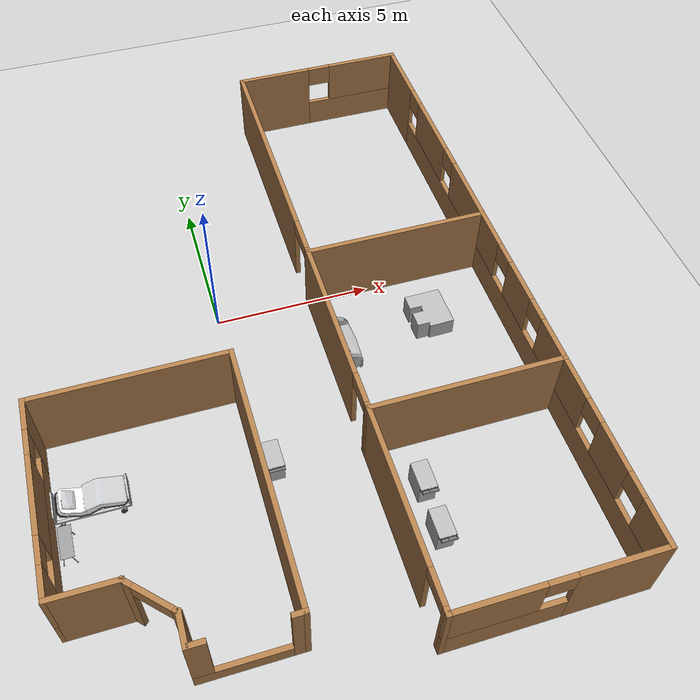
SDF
<sdf version="1.6">
 <world name="default">
  <model name="ground_plane">
   <static>1</static>
   <link name="link">
    <collision name="collision">
     <geometry><plane><normal>0 0 1</normal><size>100 100</size></plane></geometry>
     <surface>
      <contact><collide_bitmask>65535</collide_bitmask></contact>
      <friction><ode><mu>100</mu><mu2>50</mu2></ode></friction>
     </surface>
    </collision>
    <visual name="visual">
     <cast_shadows>0</cast_shadows>
     <geometry><plane><normal>0 0 1</normal><size>100 100</size></plane></geometry>
     <material>
      <script><uri>file://media/materials/scripts/gazebo.material</uri><name>Gazebo/Grey</name></script>
     </material>
    </visual>
   </link>
  </model>
  <model name="hospital_room_empty_clone">
   <link name="Wall_0">
    <pose>-4e-06 -3.9165 0 0 -0 0</pose>
    <visual name="Wall_0_Visual">
     <pose>0 0 1.25 0 -0 0</pose>
     <geometry><box><size>6 0.15 2.5</size></box></geometry>
     <material>
      <script><uri>file://media/materials/scripts/gazebo.material</uri><name>Gazebo/Wood</name></script>
      <ambient>1 1 1 1</ambient>
     </material>
     <meta><layer>0</layer></meta>
    </visual>
    <collision name="Wall_0_Collision">
     <pose>0 0 1.25 0 -0 0</pose>
     <geometry><box><size>6 0.15 2.5</size></box></geometry>
     <surface>
      <friction>
       <ode><mu>1</mu><mu2>1</mu2><fdir1>0 0 0</fdir1><slip1>0</slip1><slip2>0</slip2></ode>
       <torsional>
        <coefficient>1</coefficient>
        <patch_radius>0</patch_radius>
        <surface_radius>0</surface_radius>
        <use_patch_radius>1</use_patch_radius>
        <ode><slip>0</slip></ode>
       </torsional>
      </friction>
      <bounce><restitution_coefficient>0</restitution_coefficient><threshold>1e+06</threshold></bounce>
      <contact>
       <collide_without_contact>0</collide_without_contact>
       <collide_without_contact_bitmask>1</collide_without_contact_bitmask>
       <collide_bitmask>1</collide_bitmask>
       <ode>
        <soft_cfm>0</soft_cfm>
        <soft_erp>0.2</soft_erp>
        <kp>1e+13</kp>
        <kd>1</kd>
        <max_vel>0.01</max_vel>
        <min_depth>0</min_depth>
       </ode>
       <bullet>
        <split_impulse>1</split_impulse>
        <split_impulse_penetration_threshold>-0.01</split_impulse_penetration_threshold>
        <soft_cfm>0</soft_cfm>
        <soft_erp>0.2</soft_erp>
        <kp>1e+13</kp>
        <kd>1</kd>
       </bullet>
      </contact>
     </surface>
    </collision>
   </link>
   <link name="Wall_3">
    <pose>-2.925 0 0 0 -0 1.5708</pose>
    <visual name="Wall_3_Visual">
     <pose>0 0 1.25 0 -0 0</pose>
     <geometry><box><size>7.98302 0.15 2.5</size></box></geometry>
     <material>
      <script><uri>file://media/materials/scripts/gazebo.material</uri><name>Gazebo/Wood</name></script>
      <ambient>1 1 1 1</ambient>
     </material>
     <meta><layer>0</layer></meta>
    </visual>
    <collision name="Wall_3_Collision">
     <pose>0 0 1.25 0 -0 0</pose>
     <geometry><box><size>7.98302 0.15 2.5</size></box></geometry>
     <surface>
      <friction>
       <ode><mu>1</mu><mu2>1</mu2><fdir1>0 0 0</fdir1><slip1>0</slip1><slip2>0</slip2></ode>
       <torsional>
        <coefficient>1</coefficient>
        <patch_radius>0</patch_radius>
        <surface_radius>0</surface_radius>
        <use_patch_radius>1</use_patch_radius>
        <ode><slip>0</slip></ode>
       </torsional>
      </friction>
      <bounce><restitution_coefficient>0</restitution_coefficient><threshold>1e+06</threshold></bounce>
      <contact>
       <collide_without_contact>0</collide_without_contact>
       <collide_without_contact_bitmask>1</collide_without_contact_bitmask>
       <collide_bitmask>1</collide_bitmask>
       <ode>
        <soft_cfm>0</soft_cfm>
        <soft_erp>0.2</soft_erp>
        <kp>1e+13</kp>
        <kd>1</kd>
        <max_vel>0.01</max_vel>
        <min_depth>0</min_depth>
       </ode>
       <bullet>
        <split_impulse>1</split_impulse>
        <split_impulse_penetration_threshold>-0.01</split_impulse_penetration_threshold>
        <soft_cfm>0</soft_cfm>
        <soft_erp>0.2</soft_erp>
        <kp>1e+13</kp>
        <kd>1</kd>
       </bullet>
      </contact>
     </surface>
    </collision>
   </link>
   <link name="Wall_4">
    <pose>-1.5 3.9165 0 0 -0 0</pose>
    <visual name="Wall_4_Visual_0">
     <pose>-1.28125 0 1.25 0 -0 0</pose>
     <geometry><box><size>0.437506 0.15 2.5</size></box></geometry>
     <material>
      <script><uri>file://media/materials/scripts/gazebo.material</uri><name>Gazebo/Wood</name></script>
      <ambient>1 1 1 1</ambient>
     </material>
     <meta><layer>0</layer></meta>
    </visual>
    <visual name="Wall_4_Visual_1">
     <pose>0.218753 0 0.25 0 -0 0</pose>
     <geometry><box><size>2.56249 0.15 0.5</size></box></geometry>
     <material>
      <script><uri>file://media/materials/scripts/gazebo.material</uri><name>Gazebo/Wood</name></script>
      <ambient>1 1 1 1</ambient>
     </material>
     <meta><layer>0</layer></meta>
    </visual>
    <visual name="Wall_4_Visual_2">
     <pose>1.21875 0 1.5 0 -0 0</pose>
     <geometry><box><size>0.562494 0.15 2</size></box></geometry>
     <material>
      <script><uri>file://media/materials/scripts/gazebo.material</uri><name>Gazebo/Wood</name></script>
      <ambient>1 1 1 1</ambient>
     </material>
     <meta><layer>0</layer></meta>
    </visual>
    <collision name="Wall_4_Collision_0">
     <pose>-1.28125 0 1.25 0 -0 0</pose>
     <geometry><box><size>0.437506 0.15 2.5</size></box></geometry>
     <surface>
      <friction>
       <ode><mu>1</mu><mu2>1</mu2><fdir1>0 0 0</fdir1><slip1>0</slip1><slip2>0</slip2></ode>
       <torsional>
        <coefficient>1</coefficient>
        <patch_radius>0</patch_radius>
        <surface_radius>0</surface_radius>
        <use_patch_radius>1</use_patch_radius>
        <ode><slip>0</slip></ode>
       </torsional>
      </friction>
      <bounce><restitution_coefficient>0</restitution_coefficient><threshold>1e+06</threshold></bounce>
      <contact>
       <collide_without_contact>0</collide_without_contact>
       <collide_without_contact_bitmask>1</collide_without_contact_bitmask>
       <collide_bitmask>1</collide_bitmask>
       <ode>
        <soft_cfm>0</soft_cfm>
        <soft_erp>0.2</soft_erp>
        <kp>1e+13</kp>
        <kd>1</kd>
        <max_vel>0.01</max_vel>
        <min_depth>0</min_depth>
       </ode>
       <bullet>
        <split_impulse>1</split_impulse>
        <split_impulse_penetration_threshold>-0.01</split_impulse_penetration_threshold>
        <soft_cfm>0</soft_cfm>
        <soft_erp>0.2</soft_erp>
        <kp>1e+13</kp>
        <kd>1</kd>
       </bullet>
      </contact>
     </surface>
    </collision>
    <collision name="Wall_4_Collision_1">
     <pose>0.218753 0 0.25 0 -0 0</pose>
     <geometry><box><size>2.56249 0.15 0.5</size></box></geometry>
     <surface>
      <friction>
       <ode><mu>1</mu><mu2>1</mu2><fdir1>0 0 0</fdir1><slip1>0</slip1><slip2>0</slip2></ode>
       <torsional>
        <coefficient>1</coefficient>
        <patch_radius>0</patch_radius>
        <surface_radius>0</surface_radius>
        <use_patch_radius>1</use_patch_radius>
        <ode><slip>0</slip></ode>
       </torsional>
      </friction>
      <bounce><restitution_coefficient>0</restitution_coefficient><threshold>1e+06</threshold></bounce>
      <contact>
       <collide_without_contact>0</collide_without_contact>
       <collide_without_contact_bitmask>1</collide_without_contact_bitmask>
       <collide_bitmask>1</collide_bitmask>
       <ode>
        <soft_cfm>0</soft_cfm>
        <soft_erp>0.2</soft_erp>
        <kp>1e+13</kp>
        <kd>1</kd>
        <max_vel>0.01</max_vel>
        <min_depth>0</min_depth>
       </ode>
       <bullet>
        <split_impulse>1</split_impulse>
        <split_impulse_penetration_threshold>-0.01</split_impulse_penetration_threshold>
        <soft_cfm>0</soft_cfm>
        <soft_erp>0.2</soft_erp>
        <kp>1e+13</kp>
        <kd>1</kd>
       </bullet>
      </contact>
     </surface>
    </collision>
    <collision name="Wall_4_Collision_2">
     <pose>1.21875 0 1.5 0 -0 0</pose>
     <geometry><box><size>0.562494 0.15 2</size></box></geometry>
     <surface>
      <friction>
       <ode><mu>1</mu><mu2>1</mu2><fdir1>0 0 0</fdir1><slip1>0</slip1><slip2>0</slip2></ode>
       <torsional>
        <coefficient>1</coefficient>
        <patch_radius>0</patch_radius>
        <surface_radius>0</surface_radius>
        <use_patch_radius>1</use_patch_radius>
        <ode><slip>0</slip></ode>
       </torsional>
      </friction>
      <bounce><restitution_coefficient>0</restitution_coefficient><threshold>1e+06</threshold></bounce>
      <contact>
       <collide_without_contact>0</collide_without_contact>
       <collide_without_contact_bitmask>1</collide_without_contact_bitmask>
       <collide_bitmask>1</collide_bitmask>
       <ode>
        <soft_cfm>0</soft_cfm>
        <soft_erp>0.2</soft_erp>
        <kp>1e+13</kp>
        <kd>1</kd>
        <max_vel>0.01</max_vel>
        <min_depth>0</min_depth>
       </ode>
       <bullet>
        <split_impulse>1</split_impulse>
        <split_impulse_penetration_threshold>-0.01</split_impulse_penetration_threshold>
        <soft_cfm>0</soft_cfm>
        <soft_erp>0.2</soft_erp>
        <kp>1e+13</kp>
        <kd>1</kd>
       </bullet>
      </contact>
     </surface>
    </collision>
   </link>
   <link name="Wall_5">
    <pose>-0.075004 3.4915 0 0 0 -1.5708</pose>
    <visual name="Wall_5_Visual">
     <pose>0 0 1.25 0 -0 0</pose>
     <geometry><box><size>1 0.15 2.5</size></box></geometry>
     <material>
      <script><uri>file://media/materials/scripts/gazebo.material</uri><name>Gazebo/Wood</name></script>
      <ambient>1 1 1 1</ambient>
     </material>
     <meta><layer>0</layer></meta>
    </visual>
    <collision name="Wall_5_Collision">
     <pose>0 0 1.25 0 -0 0</pose>
     <geometry><box><size>1 0.15 2.5</size></box></geometry>
     <surface>
      <friction>
       <ode><mu>1</mu><mu2>1</mu2><fdir1>0 0 0</fdir1><slip1>0</slip1><slip2>0</slip2></ode>
       <torsional>
        <coefficient>1</coefficient>
        <patch_radius>0</patch_radius>
        <surface_radius>0</surface_radius>
        <use_patch_radius>1</use_patch_radius>
        <ode><slip>0</slip></ode>
       </torsional>
      </friction>
      <bounce><restitution_coefficient>0</restitution_coefficient><threshold>1e+06</threshold></bounce>
      <contact>
       <collide_without_contact>0</collide_without_contact>
       <collide_without_contact_bitmask>1</collide_without_contact_bitmask>
       <collide_bitmask>1</collide_bitmask>
       <ode>
        <soft_cfm>0</soft_cfm>
        <soft_erp>0.2</soft_erp>
        <kp>1e+13</kp>
        <kd>1</kd>
        <max_vel>0.01</max_vel>
        <min_depth>0</min_depth>
       </ode>
       <bullet>
        <split_impulse>1</split_impulse>
        <split_impulse_penetration_threshold>-0.01</split_impulse_penetration_threshold>
        <soft_cfm>0</soft_cfm>
        <soft_erp>0.2</soft_erp>
        <kp>1e+13</kp>
        <kd>1</kd>
       </bullet>
      </contact>
     </surface>
    </collision>
   </link>
   <link name="Wall_7">
    <pose>2.925 -1 0 0 -0 1.5708</pose>
    <visual name="Wall_7_Visual_0">
     <pose>-2.47597 0 1.25 0 -0 0</pose>
     <geometry><box><size>1.03106 0.15 2.5</size></box></geometry>
     <material>
      <script><uri>file://media/materials/scripts/gazebo.material</uri><name>Gazebo/Wood</name></script>
      <ambient>0.921569 0.807843 0.615686 1</ambient>
     </material>
     <meta><layer>0</layer></meta>
    </visual>
    <visual name="Wall_7_Visual_1">
     <pose>0.515531 0 0.5 0 -0 0</pose>
     <geometry><box><size>4.95194 0.15 1</size></box></geometry>
     <material>
      <script><uri>file://media/materials/scripts/gazebo.material</uri><name>Gazebo/Wood</name></script>
      <ambient>0.921569 0.807843 0.615686 1</ambient>
     </material>
     <meta><layer>0</layer></meta>
    </visual>
    <visual name="Wall_7_Visual_2">
     <pose>0.016139 0 1.75 0 -0 0</pose>
     <geometry><box><size>2.35315 0.15 1.5</size></box></geometry>
     <material>
      <script><uri>file://media/materials/scripts/gazebo.material</uri><name>Gazebo/Wood</name></script>
      <ambient>0.921569 0.807843 0.615686 1</ambient>
     </material>
     <meta><layer>0</layer></meta>
    </visual>
    <visual name="Wall_7_Visual_3">
     <pose>2.49211 0 1.75 0 -0 0</pose>
     <geometry><box><size>0.998785 0.15 1.5</size></box></geometry>
     <material>
      <script><uri>file://media/materials/scripts/gazebo.material</uri><name>Gazebo/Wood</name></script>
      <ambient>0.921569 0.807843 0.615686 1</ambient>
     </material>
     <meta><layer>0</layer></meta>
    </visual>
    <visual name="Wall_7_Visual_4">
     <pose>-1.56044 0 2.15 0 -0 0</pose>
     <geometry><box><size>0.8 0.15 0.7</size></box></geometry>
     <material>
      <script><uri>file://media/materials/scripts/gazebo.material</uri><name>Gazebo/Wood</name></script>
      <ambient>0.921569 0.807843 0.615686 1</ambient>
     </material>
     <meta><layer>0</layer></meta>
    </visual>
    <visual name="Wall_7_Visual_5">
     <pose>1.59272 0 2.15 0 -0 0</pose>
     <geometry><box><size>0.8 0.15 0.7</size></box></geometry>
     <material>
      <script><uri>file://media/materials/scripts/gazebo.material</uri><name>Gazebo/Wood</name></script>
      <ambient>0.921569 0.807843 0.615686 1</ambient>
     </material>
     <meta><layer>0</layer></meta>
    </visual>
    <collision name="Wall_7_Collision_0">
     <pose>-2.47597 0 1.25 0 -0 0</pose>
     <geometry><box><size>1.03106 0.15 2.5</size></box></geometry>
     <surface>
      <friction>
       <ode><mu>1</mu><mu2>1</mu2><fdir1>0 0 0</fdir1><slip1>0</slip1><slip2>0</slip2></ode>
       <torsional>
        <coefficient>1</coefficient>
        <patch_radius>0</patch_radius>
        <surface_radius>0</surface_radius>
        <use_patch_radius>1</use_patch_radius>
        <ode><slip>0</slip></ode>
       </torsional>
      </friction>
      <bounce><restitution_coefficient>0</restitution_coefficient><threshold>1e+06</threshold></bounce>
      <contact>
       <collide_without_contact>0</collide_without_contact>
       <collide_without_contact_bitmask>1</collide_without_contact_bitmask>
       <collide_bitmask>1</collide_bitmask>
       <ode>
        <soft_cfm>0</soft_cfm>
        <soft_erp>0.2</soft_erp>
        <kp>1e+13</kp>
        <kd>1</kd>
        <max_vel>0.01</max_vel>
        <min_depth>0</min_depth>
       </ode>
       <bullet>
        <split_impulse>1</split_impulse>
        <split_impulse_penetration_threshold>-0.01</split_impulse_penetration_threshold>
        <soft_cfm>0</soft_cfm>
        <soft_erp>0.2</soft_erp>
        <kp>1e+13</kp>
        <kd>1</kd>
       </bullet>
      </contact>
     </surface>
    </collision>
    <collision name="Wall_7_Collision_1">
     <pose>0.515531 0 0.5 0 -0 0</pose>
     <geometry><box><size>4.95194 0.15 1</size></box></geometry>
     <surface>
      <friction>
       <ode><mu>1</mu><mu2>1</mu2><fdir1>0 0 0</fdir1><slip1>0</slip1><slip2>0</slip2></ode>
       <torsional>
        <coefficient>1</coefficient>
        <patch_radius>0</patch_radius>
        <surface_radius>0</surface_radius>
        <use_patch_radius>1</use_patch_radius>
        <ode><slip>0</slip></ode>
       </torsional>
      </friction>
      <bounce><restitution_coefficient>0</restitution_coefficient><threshold>1e+06</threshold></bounce>
      <contact>
       <collide_without_contact>0</collide_without_contact>
       <collide_without_contact_bitmask>1</collide_without_contact_bitmask>
       <collide_bitmask>1</collide_bitmask>
       <ode>
        <soft_cfm>0</soft_cfm>
        <soft_erp>0.2</soft_erp>
        <kp>1e+13</kp>
        <kd>1</kd>
        <max_vel>0.01</max_vel>
        <min_depth>0</min_depth>
       </ode>
       <bullet>
        <split_impulse>1</split_impulse>
        <split_impulse_penetration_threshold>-0.01</split_impulse_penetration_threshold>
        <soft_cfm>0</soft_cfm>
        <soft_erp>0.2</soft_erp>
        <kp>1e+13</kp>
        <kd>1</kd>
       </bullet>
      </contact>
     </surface>
    </collision>
    <collision name="Wall_7_Collision_2">
     <pose>0.016139 0 1.75 0 -0 0</pose>
     <geometry><box><size>2.35315 0.15 1.5</size></box></geometry>
     <surface>
      <friction>
       <ode><mu>1</mu><mu2>1</mu2><fdir1>0 0 0</fdir1><slip1>0</slip1><slip2>0</slip2></ode>
       <torsional>
        <coefficient>1</coefficient>
        <patch_radius>0</patch_radius>
        <surface_radius>0</surface_radius>
        <use_patch_radius>1</use_patch_radius>
        <ode><slip>0</slip></ode>
       </torsional>
      </friction>
      <bounce><restitution_coefficient>0</restitution_coefficient><threshold>1e+06</threshold></bounce>
      <contact>
       <collide_without_contact>0</collide_without_contact>
       <collide_without_contact_bitmask>1</collide_without_contact_bitmask>
       <collide_bitmask>1</collide_bitmask>
       <ode>
        <soft_cfm>0</soft_cfm>
        <soft_erp>0.2</soft_erp>
        <kp>1e+13</kp>
        <kd>1</kd>
        <max_vel>0.01</max_vel>
        <min_depth>0</min_depth>
       </ode>
       <bullet>
        <split_impulse>1</split_impulse>
        <split_impulse_penetration_threshold>-0.01</split_impulse_penetration_threshold>
        <soft_cfm>0</soft_cfm>
        <soft_erp>0.2</soft_erp>
        <kp>1e+13</kp>
        <kd>1</kd>
       </bullet>
      </contact>
     </surface>
    </collision>
    <collision name="Wall_7_Collision_3">
     <pose>2.49211 0 1.75 0 -0 0</pose>
     <geometry><box><size>0.998785 0.15 1.5</size></box></geometry>
     <surface>
      <friction>
       <ode><mu>1</mu><mu2>1</mu2><fdir1>0 0 0</fdir1><slip1>0</slip1><slip2>0</slip2></ode>
       <torsional>
        <coefficient>1</coefficient>
        <patch_radius>0</patch_radius>
        <surface_radius>0</surface_radius>
        <use_patch_radius>1</use_patch_radius>
        <ode><slip>0</slip></ode>
       </torsional>
      </friction>
      <bounce><restitution_coefficient>0</restitution_coefficient><threshold>1e+06</threshold></bounce>
      <contact>
       <collide_without_contact>0</collide_without_contact>
       <collide_without_contact_bitmask>1</collide_without_contact_bitmask>
       <collide_bitmask>1</collide_bitmask>
       <ode>
        <soft_cfm>0</soft_cfm>
        <soft_erp>0.2</soft_erp>
        <kp>1e+13</kp>
        <kd>1</kd>
        <max_vel>0.01</max_vel>
        <min_depth>0</min_depth>
       </ode>
       <bullet>
        <split_impulse>1</split_impulse>
        <split_impulse_penetration_threshold>-0.01</split_impulse_penetration_threshold>
        <soft_cfm>0</soft_cfm>
        <soft_erp>0.2</soft_erp>
        <kp>1e+13</kp>
        <kd>1</kd>
       </bullet>
      </contact>
     </surface>
    </collision>
    <collision name="Wall_7_Collision_4">
     <pose>-1.56044 0 2.15 0 -0 0</pose>
     <geometry><box><size>0.8 0.15 0.7</size></box></geometry>
     <surface>
      <friction>
       <ode><mu>1</mu><mu2>1</mu2><fdir1>0 0 0</fdir1><slip1>0</slip1><slip2>0</slip2></ode>
       <torsional>
        <coefficient>1</coefficient>
        <patch_radius>0</patch_radius>
        <surface_radius>0</surface_radius>
        <use_patch_radius>1</use_patch_radius>
        <ode><slip>0</slip></ode>
       </torsional>
      </friction>
      <bounce><restitution_coefficient>0</restitution_coefficient><threshold>1e+06</threshold></bounce>
      <contact>
       <collide_without_contact>0</collide_without_contact>
       <collide_without_contact_bitmask>1</collide_without_contact_bitmask>
       <collide_bitmask>1</collide_bitmask>
       <ode>
        <soft_cfm>0</soft_cfm>
        <soft_erp>0.2</soft_erp>
        <kp>1e+13</kp>
        <kd>1</kd>
        <max_vel>0.01</max_vel>
        <min_depth>0</min_depth>
       </ode>
       <bullet>
        <split_impulse>1</split_impulse>
        <split_impulse_penetration_threshold>-0.01</split_impulse_penetration_threshold>
        <soft_cfm>0</soft_cfm>
        <soft_erp>0.2</soft_erp>
        <kp>1e+13</kp>
        <kd>1</kd>
       </bullet>
      </contact>
     </surface>
    </collision>
    <collision name="Wall_7_Collision_5">
     <pose>1.59272 0 2.15 0 -0 0</pose>
     <geometry><box><size>0.8 0.15 0.7</size></box></geometry>
     <surface>
      <friction>
       <ode><mu>1</mu><mu2>1</mu2><fdir1>0 0 0</fdir1><slip1>0</slip1><slip2>0</slip2></ode>
       <torsional>
        <coefficient>1</coefficient>
        <patch_radius>0</patch_radius>
        <surface_radius>0</surface_radius>
        <use_patch_radius>1</use_patch_radius>
        <ode><slip>0</slip></ode>
       </torsional>
      </friction>
      <bounce><restitution_coefficient>0</restitution_coefficient><threshold>1e+06</threshold></bounce>
      <contact>
       <collide_without_contact>0</collide_without_contact>
       <collide_without_contact_bitmask>1</collide_without_contact_bitmask>
       <collide_bitmask>1</collide_bitmask>
       <ode>
        <soft_cfm>0</soft_cfm>
        <soft_erp>0.2</soft_erp>
        <kp>1e+13</kp>
        <kd>1</kd>
        <max_vel>0.01</max_vel>
        <min_depth>0</min_depth>
       </ode>
       <bullet>
        <split_impulse>1</split_impulse>
        <split_impulse_penetration_threshold>-0.01</split_impulse_penetration_threshold>
        <soft_cfm>0</soft_cfm>
        <soft_erp>0.2</soft_erp>
        <kp>1e+13</kp>
        <kd>1</kd>
       </bullet>
      </contact>
     </surface>
    </collision>
   </link>
   <link name="Wall_8">
    <pose>2 1.9166 0 0 -0 3.14148</pose>
    <visual name="Wall_8_Visual">
     <pose>0 0 1.25 0 -0 0</pose>
     <geometry><box><size>2 0.15 2.5</size></box></geometry>
     <material>
      <script><uri>file://media/materials/scripts/gazebo.material</uri><name>Gazebo/Wood</name></script>
      <ambient>1 1 1 1</ambient>
     </material>
     <meta><layer>0</layer></meta>
    </visual>
    <collision name="Wall_8_Collision">
     <pose>0 0 1.25 0 -0 0</pose>
     <geometry><box><size>2 0.15 2.5</size></box></geometry>
     <surface>
      <friction>
       <ode><mu>1</mu><mu2>1</mu2><fdir1>0 0 0</fdir1><slip1>0</slip1><slip2>0</slip2></ode>
       <torsional>
        <coefficient>1</coefficient>
        <patch_radius>0</patch_radius>
        <surface_radius>0</surface_radius>
        <use_patch_radius>1</use_patch_radius>
        <ode><slip>0</slip></ode>
       </torsional>
      </friction>
      <bounce><restitution_coefficient>0</restitution_coefficient><threshold>1e+06</threshold></bounce>
      <contact>
       <collide_without_contact>0</collide_without_contact>
       <collide_without_contact_bitmask>1</collide_without_contact_bitmask>
       <collide_bitmask>1</collide_bitmask>
       <ode>
        <soft_cfm>0</soft_cfm>
        <soft_erp>0.2</soft_erp>
        <kp>1e+13</kp>
        <kd>1</kd>
        <max_vel>0.01</max_vel>
        <min_depth>0</min_depth>
       </ode>
       <bullet>
        <split_impulse>1</split_impulse>
        <split_impulse_penetration_threshold>-0.01</split_impulse_penetration_threshold>
        <soft_cfm>0</soft_cfm>
        <soft_erp>0.2</soft_erp>
        <kp>1e+13</kp>
        <kd>1</kd>
       </bullet>
      </contact>
     </surface>
    </collision>
   </link>
   <link name="Wall_9">
    <pose>0.499996 2.4916 0 0 -0 2.35628</pose>
    <visual name="Wall_9_Visual_1">
     <pose>0.785148 0 1.25 0 -0 0</pose>
     <geometry><box><size>0.205905 0.15 2.5</size></box></geometry>
     <material>
      <script><uri>file://media/materials/scripts/gazebo.material</uri><name>Gazebo/Wood</name></script>
      <ambient>1 1 1 1</ambient>
     </material>
     <meta><layer>0</layer></meta>
    </visual>
    <visual name="Wall_9_Visual_0">
     <pose>-0.702952 0 1.25 0 -0 0</pose>
     <geometry><box><size>0.370295 0.15 2.5</size></box></geometry>
     <material>
      <script><uri>file://media/materials/scripts/gazebo.material</uri><name>Gazebo/Wood</name></script>
      <ambient>1 1 1 1</ambient>
     </material>
     <meta><layer>0</layer></meta>
    </visual>
    <visual name="Wall_9_Visual_2">
     <pose>0.082195 0 2.25 0 -0 0</pose>
     <geometry><box><size>1.2 0.15 0.5</size></box></geometry>
     <material>
      <script><uri>file://media/materials/scripts/gazebo.material</uri><name>Gazebo/Wood</name></script>
      <ambient>1 1 1 1</ambient>
     </material>
     <meta><layer>0</layer></meta>
    </visual>
    <collision name="Wall_9_Collision_0">
     <pose>-0.702952 0 1.25 0 -0 0</pose>
     <geometry><box><size>0.370295 0.15 2.5</size></box></geometry>
     <surface>
      <friction>
       <ode><mu>1</mu><mu2>1</mu2><fdir1>0 0 0</fdir1><slip1>0</slip1><slip2>0</slip2></ode>
       <torsional>
        <coefficient>1</coefficient>
        <patch_radius>0</patch_radius>
        <surface_radius>0</surface_radius>
        <use_patch_radius>1</use_patch_radius>
        <ode><slip>0</slip></ode>
       </torsional>
      </friction>
      <bounce><restitution_coefficient>0</restitution_coefficient><threshold>1e+06</threshold></bounce>
      <contact>
       <collide_without_contact>0</collide_without_contact>
       <collide_without_contact_bitmask>1</collide_without_contact_bitmask>
       <collide_bitmask>1</collide_bitmask>
       <ode>
        <soft_cfm>0</soft_cfm>
        <soft_erp>0.2</soft_erp>
        <kp>1e+13</kp>
        <kd>1</kd>
        <max_vel>0.01</max_vel>
        <min_depth>0</min_depth>
       </ode>
       <bullet>
        <split_impulse>1</split_impulse>
        <split_impulse_penetration_threshold>-0.01</split_impulse_penetration_threshold>
        <soft_cfm>0</soft_cfm>
        <soft_erp>0.2</soft_erp>
        <kp>1e+13</kp>
        <kd>1</kd>
       </bullet>
      </contact>
     </surface>
    </collision>
    <collision name="Wall_9_Collision_1">
     <pose>0.785148 0 1.25 0 -0 0</pose>
     <geometry><box><size>0.205905 0.15 2.5</size></box></geometry>
     <surface>
      <friction>
       <ode><mu>1</mu><mu2>1</mu2><fdir1>0 0 0</fdir1><slip1>0</slip1><slip2>0</slip2></ode>
       <torsional>
        <coefficient>1</coefficient>
        <patch_radius>0</patch_radius>
        <surface_radius>0</surface_radius>
        <use_patch_radius>1</use_patch_radius>
        <ode><slip>0</slip></ode>
       </torsional>
      </friction>
      <bounce><restitution_coefficient>0</restitution_coefficient><threshold>1e+06</threshold></bounce>
      <contact>
       <collide_without_contact>0</collide_without_contact>
       <collide_without_contact_bitmask>1</collide_without_contact_bitmask>
       <collide_bitmask>1</collide_bitmask>
       <ode>
        <soft_cfm>0</soft_cfm>
        <soft_erp>0.2</soft_erp>
        <kp>1e+13</kp>
        <kd>1</kd>
        <max_vel>0.01</max_vel>
        <min_depth>0</min_depth>
       </ode>
       <bullet>
        <split_impulse>1</split_impulse>
        <split_impulse_penetration_threshold>-0.01</split_impulse_penetration_threshold>
        <soft_cfm>0</soft_cfm>
        <soft_erp>0.2</soft_erp>
        <kp>1e+13</kp>
        <kd>1</kd>
       </bullet>
      </contact>
     </surface>
    </collision>
    <collision name="Wall_9_Collision_2">
     <pose>0.082195 0 2.25 0 -0 0</pose>
     <geometry><box><size>1.2 0.15 0.5</size></box></geometry>
     <surface>
      <friction>
       <ode><mu>1</mu><mu2>1</mu2><fdir1>0 0 0</fdir1><slip1>0</slip1><slip2>0</slip2></ode>
       <torsional>
        <coefficient>1</coefficient>
        <patch_radius>0</patch_radius>
        <surface_radius>0</surface_radius>
        <use_patch_radius>1</use_patch_radius>
        <ode><slip>0</slip></ode>
       </torsional>
      </friction>
      <bounce><restitution_coefficient>0</restitution_coefficient><threshold>1e+06</threshold></bounce>
      <contact>
       <collide_without_contact>0</collide_without_contact>
       <collide_without_contact_bitmask>1</collide_without_contact_bitmask>
       <collide_bitmask>1</collide_bitmask>
       <ode>
        <soft_cfm>0</soft_cfm>
        <soft_erp>0.2</soft_erp>
        <kp>1e+13</kp>
        <kd>1</kd>
        <max_vel>0.01</max_vel>
        <min_depth>0</min_depth>
       </ode>
       <bullet>
        <split_impulse>1</split_impulse>
        <split_impulse_penetration_threshold>-0.01</split_impulse_penetration_threshold>
        <soft_cfm>0</soft_cfm>
        <soft_erp>0.2</soft_erp>
        <kp>1e+13</kp>
        <kd>1</kd>
       </bullet>
      </contact>
     </surface>
    </collision>
   </link>
   <static>1</static>
   <pose>-3.00568 -7.00442 0 0 -0 3.14145</pose>
  </model>
  <model name="hospital_room2_empty_0">
   <pose>5.99215 -1.51021 0 0 -0 0</pose>
   <link name="Wall_0">
    <pose>-2.925 0 0 0 -0 1.5708</pose>
    <visual name="Wall_0_Visual_0">
     <pose>-10.3642 0 1.25 0 -0 0</pose>
     <geometry><box><size>0.271667 0.15 2.5</size></box></geometry>
     <material>
      <script><uri>file://media/materials/scripts/gazebo.material</uri><name>Gazebo/Wood</name></script>
      <ambient>1 1 1 1</ambient>
     </material>
     <meta><layer>0</layer></meta>
    </visual>
    <collision name="Wall_0_Collision_0">
     <geometry><box><size>0.271667 0.15 2.5</size></box></geometry>
     <pose>-10.3642 0 1.25 0 -0 0</pose>
    </collision>
    <visual name="Wall_0_Visual_1">
     <pose>-6.76986 0 1.25 0 -0 0</pose>
     <geometry><box><size>4.91694 0.15 2.5</size></box></geometry>
     <material>
      <script><uri>file://media/materials/scripts/gazebo.material</uri><name>Gazebo/Wood</name></script>
      <ambient>1 1 1 1</ambient>
     </material>
     <meta><layer>0</layer></meta>
    </visual>
    <collision name="Wall_0_Collision_1">
     <geometry><box><size>4.91694 0.15 2.5</size></box></geometry>
     <pose>-6.76986 0 1.25 0 -0 0</pose>
    </collision>
    <visual name="Wall_0_Visual_2">
     <pose>-0.820784 0 1.25 0 -0 0</pose>
     <geometry><box><size>4.98121 0.15 2.5</size></box></geometry>
     <material>
      <script><uri>file://media/materials/scripts/gazebo.material</uri><name>Gazebo/Wood</name></script>
      <ambient>1 1 1 1</ambient>
     </material>
     <meta><layer>0</layer></meta>
    </visual>
    <collision name="Wall_0_Collision_2">
     <geometry><box><size>4.98121 0.15 2.5</size></box></geometry>
     <pose>-0.820784 0 1.25 0 -0 0</pose>
    </collision>
    <visual name="Wall_0_Visual_3">
     <pose>6.68491 0 1.25 0 -0 0</pose>
     <geometry><box><size>7.63018 0.15 2.5</size></box></geometry>
     <material>
      <script><uri>file://media/materials/scripts/gazebo.material</uri><name>Gazebo/Wood</name></script>
      <ambient>1 1 1 1</ambient>
     </material>
     <meta><layer>0</layer></meta>
    </visual>
    <collision name="Wall_0_Collision_3">
     <geometry><box><size>7.63018 0.15 2.5</size></box></geometry>
     <pose>6.68491 0 1.25 0 -0 0</pose>
    </collision>
    <visual name="Wall_0_Visual_4">
     <pose>-9.72833 0 2.25 0 -0 0</pose>
     <geometry><box><size>1 0.15 0.5</size></box></geometry>
     <material>
      <script><uri>file://media/materials/scripts/gazebo.material</uri><name>Gazebo/Wood</name></script>
      <ambient>1 1 1 1</ambient>
     </material>
     <meta><layer>0</layer></meta>
    </visual>
    <collision name="Wall_0_Collision_4">
     <geometry><box><size>1 0.15 0.5</size></box></geometry>
     <pose>-9.72833 0 2.25 0 -0 0</pose>
    </collision>
    <visual name="Wall_0_Visual_5">
     <pose>-3.81139 0 2.25 0 -0 0</pose>
     <geometry><box><size>1 0.15 0.5</size></box></geometry>
     <material>
      <script><uri>file://media/materials/scripts/gazebo.material</uri><name>Gazebo/Wood</name></script>
      <ambient>1 1 1 1</ambient>
     </material>
     <meta><layer>0</layer></meta>
    </visual>
    <collision name="Wall_0_Collision_5">
     <geometry><box><size>1 0.15 0.5</size></box></geometry>
     <pose>-3.81139 0 2.25 0 -0 0</pose>
    </collision>
    <visual name="Wall_0_Visual_6">
     <pose>2.26982 0 2.25 0 -0 0</pose>
     <geometry><box><size>1.2 0.15 0.5</size></box></geometry>
     <material>
      <script><uri>file://media/materials/scripts/gazebo.material</uri><name>Gazebo/Wood</name></script>
      <ambient>1 1 1 1</ambient>
     </material>
     <meta><layer>0</layer></meta>
    </visual>
    <collision name="Wall_0_Collision_6">
     <geometry><box><size>1.2 0.15 0.5</size></box></geometry>
     <pose>2.26982 0 2.25 0 -0 0</pose>
    </collision>
   </link>
   <link name="Wall_10">
    <collision name="Wall_10_Collision">
     <geometry><box><size>6 0.15 2.5</size></box></geometry>
     <pose>0 0 1.25 0 -0 0</pose>
    </collision>
    <visual name="Wall_10_Visual">
     <pose>0 0 1.25 0 -0 0</pose>
     <geometry><box><size>6 0.15 2.5</size></box></geometry>
     <material>
      <script><uri>file://media/materials/scripts/gazebo.material</uri><name>Gazebo/Wood</name></script>
      <ambient>1 1 1 1</ambient>
     </material>
     <meta><layer>0</layer></meta>
    </visual>
    <pose>-0 -4.5 0 0 -0 0</pose>
   </link>
   <link name="Wall_2">
    <pose>-0 10.425 0 0 -0 0</pose>
    <visual name="Wall_2_Visual_0">
     <pose>-1.69561 0 1.25 0 -0 0</pose>
     <geometry><box><size>2.60879 0.15 2.5</size></box></geometry>
     <material>
      <script><uri>file://media/materials/scripts/gazebo.material</uri><name>Gazebo/Wood</name></script>
      <ambient>1 1 1 1</ambient>
     </material>
     <meta><layer>0</layer></meta>
    </visual>
    <collision name="Wall_2_Collision_0">
     <geometry><box><size>2.60879 0.15 2.5</size></box></geometry>
     <pose>-1.69561 0 1.25 0 -0 0</pose>
    </collision>
    <visual name="Wall_2_Visual_1">
     <pose>1.30439 0 0.5 0 -0 0</pose>
     <geometry><box><size>3.39121 0.15 1</size></box></geometry>
     <material>
      <script><uri>file://media/materials/scripts/gazebo.material</uri><name>Gazebo/Wood</name></script>
      <ambient>1 1 1 1</ambient>
     </material>
     <meta><layer>0</layer></meta>
    </visual>
    <collision name="Wall_2_Collision_1">
     <geometry><box><size>3.39121 0.15 1</size></box></geometry>
     <pose>1.30439 0 0.5 0 -0 0</pose>
    </collision>
    <visual name="Wall_2_Visual_2">
     <pose>1.7044 0 1.75 0 -0 0</pose>
     <geometry><box><size>2.59121 0.15 1.5</size></box></geometry>
     <material>
      <script><uri>file://media/materials/scripts/gazebo.material</uri><name>Gazebo/Wood</name></script>
      <ambient>1 1 1 1</ambient>
     </material>
     <meta><layer>0</layer></meta>
    </visual>
    <collision name="Wall_2_Collision_2">
     <geometry><box><size>2.59121 0.15 1.5</size></box></geometry>
     <pose>1.7044 0 1.75 0 -0 0</pose>
    </collision>
    <visual name="Wall_2_Visual_3">
     <pose>0.008791 0 2.15 0 -0 0</pose>
     <geometry><box><size>0.8 0.15 0.7</size></box></geometry>
     <material>
      <script><uri>file://media/materials/scripts/gazebo.material</uri><name>Gazebo/Wood</name></script>
      <ambient>1 1 1 1</ambient>
     </material>
     <meta><layer>0</layer></meta>
    </visual>
    <collision name="Wall_2_Collision_3">
     <geometry><box><size>0.8 0.15 0.7</size></box></geometry>
     <pose>0.008791 0 2.15 0 -0 0</pose>
    </collision>
   </link>
   <link name="Wall_4">
    <pose>2.925 0 0 0 -0 -1.5708</pose>
    <visual name="Wall_4_Visual_0">
     <pose>-9.29746 0 1.25 0 -0 0</pose>
     <geometry><box><size>2.40508 0.15 2.5</size></box></geometry>
     <material>
      <script><uri>file://media/materials/scripts/gazebo.material</uri><name>Gazebo/Wood</name></script>
      <ambient>1 1 1 1</ambient>
     </material>
     <meta><layer>0</layer></meta>
    </visual>
    <collision name="Wall_4_Collision_0">
     <geometry><box><size>2.40508 0.15 2.5</size></box></geometry>
     <pose>-9.29746 0 1.25 0 -0 0</pose>
    </collision>
    <visual name="Wall_4_Visual_1">
     <pose>1.20254 0 0.5 0 -0 0</pose>
     <geometry><box><size>18.5949 0.15 1</size></box></geometry>
     <material>
      <script><uri>file://media/materials/scripts/gazebo.material</uri><name>Gazebo/Wood</name></script>
      <ambient>1 1 1 1</ambient>
     </material>
     <meta><layer>0</layer></meta>
    </visual>
    <collision name="Wall_4_Collision_1">
     <geometry><box><size>18.5949 0.15 1</size></box></geometry>
     <pose>1.20254 0 0.5 0 -0 0</pose>
    </collision>
    <visual name="Wall_4_Visual_2">
     <pose>-6.03126 0 1.75 0 -0 0</pose>
     <geometry><box><size>2.52732 0.15 1.5</size></box></geometry>
     <material>
      <script><uri>file://media/materials/scripts/gazebo.material</uri><name>Gazebo/Wood</name></script>
      <ambient>1 1 1 1</ambient>
     </material>
     <meta><layer>0</layer></meta>
    </visual>
    <collision name="Wall_4_Collision_2">
     <geometry><box><size>2.52732 0.15 1.5</size></box></geometry>
     <pose>-6.03126 0 1.75 0 -0 0</pose>
    </collision>
    <visual name="Wall_4_Visual_3">
     <pose>-2.02155 0 1.75 0 -0 0</pose>
     <geometry><box><size>3.8921 0.15 1.5</size></box></geometry>
     <material>
      <script><uri>file://media/materials/scripts/gazebo.material</uri><name>Gazebo/Wood</name></script>
      <ambient>1 1 1 1</ambient>
     </material>
     <meta><layer>0</layer></meta>
    </visual>
    <collision name="Wall_4_Collision_3">
     <geometry><box><size>3.8921 0.15 1.5</size></box></geometry>
     <pose>-2.02155 0 1.75 0 -0 0</pose>
    </collision>
    <visual name="Wall_4_Visual_4">
     <pose>1.49744 0 1.75 0 -0 0</pose>
     <geometry><box><size>1.54589 0.15 1.5</size></box></geometry>
     <material>
      <script><uri>file://media/materials/scripts/gazebo.material</uri><name>Gazebo/Wood</name></script>
      <ambient>1 1 1 1</ambient>
     </material>
     <meta><layer>0</layer></meta>
    </visual>
    <collision name="Wall_4_Collision_4">
     <geometry><box><size>1.54589 0.15 1.5</size></box></geometry>
     <pose>1.49744 0 1.75 0 -0 0</pose>
    </collision>
    <visual name="Wall_4_Visual_5">
     <pose>4.50824 0 1.75 0 -0 0</pose>
     <geometry><box><size>2.87571 0.15 1.5</size></box></geometry>
     <material>
      <script><uri>file://media/materials/scripts/gazebo.material</uri><name>Gazebo/Wood</name></script>
      <ambient>1 1 1 1</ambient>
     </material>
     <meta><layer>0</layer></meta>
    </visual>
    <collision name="Wall_4_Collision_5">
     <geometry><box><size>2.87571 0.15 1.5</size></box></geometry>
     <pose>4.50824 0 1.75 0 -0 0</pose>
    </collision>
    <visual name="Wall_4_Visual_6">
     <pose>7.51696 0 1.75 0 -0 0</pose>
     <geometry><box><size>1.54173 0.15 1.5</size></box></geometry>
     <material>
      <script><uri>file://media/materials/scripts/gazebo.material</uri><name>Gazebo/Wood</name></script>
      <ambient>1 1 1 1</ambient>
     </material>
     <meta><layer>0</layer></meta>
    </visual>
    <collision name="Wall_4_Collision_6">
     <geometry><box><size>1.54173 0.15 1.5</size></box></geometry>
     <pose>7.51696 0 1.75 0 -0 0</pose>
    </collision>
    <visual name="Wall_4_Visual_7">
     <pose>9.79392 0 1.75 0 -0 0</pose>
     <geometry><box><size>1.41217 0.15 1.5</size></box></geometry>
     <material>
      <script><uri>file://media/materials/scripts/gazebo.material</uri><name>Gazebo/Wood</name></script>
      <ambient>1 1 1 1</ambient>
     </material>
     <meta><layer>0</layer></meta>
    </visual>
    <collision name="Wall_4_Collision_7">
     <geometry><box><size>1.41217 0.15 1.5</size></box></geometry>
     <pose>9.79392 0 1.75 0 -0 0</pose>
    </collision>
    <visual name="Wall_4_Visual_8">
     <pose>-7.69492 0 2.15 0 -0 0</pose>
     <geometry><box><size>0.8 0.15 0.7</size></box></geometry>
     <material>
      <script><uri>file://media/materials/scripts/gazebo.material</uri><name>Gazebo/Wood</name></script>
      <ambient>1 1 1 1</ambient>
     </material>
     <meta><layer>0</layer></meta>
    </visual>
    <collision name="Wall_4_Collision_8">
     <geometry><box><size>0.8 0.15 0.7</size></box></geometry>
     <pose>-7.69492 0 2.15 0 -0 0</pose>
    </collision>
    <visual name="Wall_4_Visual_9">
     <pose>-4.36759 0 2.15 0 -0 0</pose>
     <geometry><box><size>0.8 0.15 0.7</size></box></geometry>
     <material>
      <script><uri>file://media/materials/scripts/gazebo.material</uri><name>Gazebo/Wood</name></script>
      <ambient>1 1 1 1</ambient>
     </material>
     <meta><layer>0</layer></meta>
    </visual>
    <collision name="Wall_4_Collision_9">
     <geometry><box><size>0.8 0.15 0.7</size></box></geometry>
     <pose>-4.36759 0 2.15 0 -0 0</pose>
    </collision>
    <visual name="Wall_4_Visual_10">
     <pose>0.324501 0 2.15 0 -0 0</pose>
     <geometry><box><size>0.8 0.15 0.7</size></box></geometry>
     <material>
      <script><uri>file://media/materials/scripts/gazebo.material</uri><name>Gazebo/Wood</name></script>
      <ambient>1 1 1 1</ambient>
     </material>
     <meta><layer>0</layer></meta>
    </visual>
    <collision name="Wall_4_Collision_10">
     <geometry><box><size>0.8 0.15 0.7</size></box></geometry>
     <pose>0.324501 0 2.15 0 -0 0</pose>
    </collision>
    <visual name="Wall_4_Visual_11">
     <pose>2.67039 0 2.15 0 -0 0</pose>
     <geometry><box><size>0.8 0.15 0.7</size></box></geometry>
     <material>
      <script><uri>file://media/materials/scripts/gazebo.material</uri><name>Gazebo/Wood</name></script>
      <ambient>1 1 1 1</ambient>
     </material>
     <meta><layer>0</layer></meta>
    </visual>
    <collision name="Wall_4_Collision_11">
     <geometry><box><size>0.8 0.15 0.7</size></box></geometry>
     <pose>2.67039 0 2.15 0 -0 0</pose>
    </collision>
    <visual name="Wall_4_Visual_12">
     <pose>6.3461 0 2.15 0 -0 0</pose>
     <geometry><box><size>0.8 0.15 0.7</size></box></geometry>
     <material>
      <script><uri>file://media/materials/scripts/gazebo.material</uri><name>Gazebo/Wood</name></script>
      <ambient>1 1 1 1</ambient>
     </material>
     <meta><layer>0</layer></meta>
    </visual>
    <collision name="Wall_4_Collision_12">
     <geometry><box><size>0.8 0.15 0.7</size></box></geometry>
     <pose>6.3461 0 2.15 0 -0 0</pose>
    </collision>
    <visual name="Wall_4_Visual_13">
     <pose>8.68783 0 2.15 0 -0 0</pose>
     <geometry><box><size>0.8 0.15 0.7</size></box></geometry>
     <material>
      <script><uri>file://media/materials/scripts/gazebo.material</uri><name>Gazebo/Wood</name></script>
      <ambient>1 1 1 1</ambient>
     </material>
     <meta><layer>0</layer></meta>
    </visual>
    <collision name="Wall_4_Collision_13">
     <geometry><box><size>0.8 0.15 0.7</size></box></geometry>
     <pose>8.68783 0 2.15 0 -0 0</pose>
    </collision>
   </link>
   <link name="Wall_6">
    <pose>-0 -10.425 0 0 -0 3.14159</pose>
    <visual name="Wall_6_Visual_0">
     <pose>-1.7044 0 1.25 0 -0 0</pose>
     <geometry><box><size>2.59121 0.15 2.5</size></box></geometry>
     <material>
      <script><uri>file://media/materials/scripts/gazebo.material</uri><name>Gazebo/Wood</name></script>
      <ambient>1 1 1 1</ambient>
     </material>
     <meta><layer>0</layer></meta>
    </visual>
    <collision name="Wall_6_Collision_0">
     <geometry><box><size>2.59121 0.15 2.5</size></box></geometry>
     <pose>-1.7044 0 1.25 0 -0 0</pose>
    </collision>
    <visual name="Wall_6_Visual_1">
     <pose>1.2956 0 0.5 0 -0 0</pose>
     <geometry><box><size>3.40879 0.15 1</size></box></geometry>
     <material>
      <script><uri>file://media/materials/scripts/gazebo.material</uri><name>Gazebo/Wood</name></script>
      <ambient>1 1 1 1</ambient>
     </material>
     <meta><layer>0</layer></meta>
    </visual>
    <collision name="Wall_6_Collision_1">
     <geometry><box><size>3.40879 0.15 1</size></box></geometry>
     <pose>1.2956 0 0.5 0 -0 0</pose>
    </collision>
    <visual name="Wall_6_Visual_2">
     <pose>1.69561 0 1.75 0 -0 0</pose>
     <geometry><box><size>2.60879 0.15 1.5</size></box></geometry>
     <material>
      <script><uri>file://media/materials/scripts/gazebo.material</uri><name>Gazebo/Wood</name></script>
      <ambient>1 1 1 1</ambient>
     </material>
     <meta><layer>0</layer></meta>
    </visual>
    <collision name="Wall_6_Collision_2">
     <geometry><box><size>2.60879 0.15 1.5</size></box></geometry>
     <pose>1.69561 0 1.75 0 -0 0</pose>
    </collision>
    <visual name="Wall_6_Visual_3">
     <pose>-0.008791 0 2.15 0 -0 0</pose>
     <geometry><box><size>0.8 0.15 0.7</size></box></geometry>
     <material>
      <script><uri>file://media/materials/scripts/gazebo.material</uri><name>Gazebo/Wood</name></script>
      <ambient>1 1 1 1</ambient>
     </material>
     <meta><layer>0</layer></meta>
    </visual>
    <collision name="Wall_6_Collision_3">
     <geometry><box><size>0.8 0.15 0.7</size></box></geometry>
     <pose>-0.008791 0 2.15 0 -0 0</pose>
    </collision>
   </link>
   <link name="Wall_8">
    <collision name="Wall_8_Collision">
     <geometry><box><size>6 0.15 2.5</size></box></geometry>
     <pose>0 0 1.25 0 -0 0</pose>
    </collision>
    <visual name="Wall_8_Visual">
     <pose>0 0 1.25 0 -0 0</pose>
     <geometry><box><size>6 0.15 2.5</size></box></geometry>
     <material>
      <script><uri>file://media/materials/scripts/gazebo.material</uri><name>Gazebo/Wood</name></script>
      <ambient>1 1 1 1</ambient>
     </material>
     <meta><layer>0</layer></meta>
    </visual>
    <pose>-0 1.5 0 0 -0 0</pose>
   </link>
   <static>1</static>
  </model>
  <model name="chairs_and_table_0">
   <static>1</static>
   <link name="link">
    <inertial>
     <mass>30</mass>
     <inertia><ixx>1</ixx><ixy>0</ixy><ixz>0</ixz><iyy>1</iyy><iyz>0</iyz><izz>1</izz></inertia>
    </inertial>
    <collision name="collision">
     <geometry><mesh><uri>model://chairs_and_table/chairs_and_table_collision.dae</uri></mesh></geometry>
    </collision>
    <visual name="visual">
     <geometry><mesh><uri>model://chairs_and_table/chairs_and_table.dae</uri></mesh></geometry>
    </visual>
   </link>
   <pose>6.73017 -1.84032 0 0 0 -1.55214</pose>
  </model>
  <model name="round_sofa_3">
   <static>1</static>
   <link name="link">
    <inertial>
     <mass>5</mass>
     <inertia><ixx>1</ixx><ixy>0</ixy><ixz>0</ixz><iyy>1</iyy><iyz>0</iyz><izz>1</izz></inertia>
    </inertial>
    <collision name="collision">
     <pose>-0.09 -0.05 0.425 0 -0 0</pose>
     <geometry><box><size>1.65 0.85 0.85</size></box></geometry>
    </collision>
    <visual name="visual"><geometry><mesh><uri>model://round_sofa/round_sofa.dae</uri></mesh></geometry></visual>
   </link>
   <pose>3.51697 -2.10615 0 0 -0 1.57788</pose>
  </model>
  <model name="service_cart_4">
   <static>0</static>
   <link name="link">
    <inertial>
     <mass>10</mass>
     <inertia><ixx>1</ixx><ixy>0</ixy><ixz>0</ixz><iyy>1</iyy><iyz>0</iyz><izz>1</izz></inertia>
    </inertial>
    <collision name="collision">
     <geometry><mesh><uri>model://service_cart/service_cart_collision.dae</uri></mesh></geometry>
    </collision>
    <visual name="visual">
     <geometry><mesh><uri>model://service_cart/service_cart.dae</uri></mesh></geometry>
    </visual>
   </link>
   <pose>4.25906 -7.58532 -0.000842 0 9e-06 2e-06</pose>
  </model>
  <model name="service_cart_5">
   <static>0</static>
   <link name="link">
    <inertial>
     <mass>10</mass>
     <inertia><ixx>1</ixx><ixy>0</ixy><ixz>0</ixz><iyy>1</iyy><iyz>0</iyz><izz>1</izz></inertia>
    </inertial>
    <collision name="collision">
     <geometry><mesh><uri>model://service_cart/service_cart_collision.dae</uri></mesh></geometry>
    </collision>
    <visual name="visual">
     <geometry><mesh><uri>model://service_cart/service_cart.dae</uri></mesh></geometry>
    </visual>
   </link>
   <pose>4.23851 -9.05079 -0.000842 0 9e-06 2e-06</pose>
  </model>
  <model name="ikea_desk_2">
   <static>1</static>
   <link name="link">
    <inertial>
     <mass>5</mass>
     <inertia><ixx>1</ixx><ixy>0</ixy><ixz>0</ixz><iyy>1</iyy><iyz>0</iyz><izz>1</izz></inertia>
    </inertial>
    <collision name="collision">
     <pose>0 0.03 0.227 0 -0 0</pose>
     <geometry><box><size>0.416 0.98 0.455</size></box></geometry>
    </collision>
    <visual name="visual"><geometry><mesh><uri>model://ikea_desk/ikea_desk.dae</uri></mesh></geometry></visual>
   </link>
   <pose>-5.54953 -6.54185 0 0 -0 0</pose>
  </model>
  <model name="service_cart_9">
   <static>0</static>
   <link name="link">
    <inertial>
     <mass>10</mass>
     <inertia><ixx>1</ixx><ixy>0</ixy><ixz>0</ixz><iyy>1</iyy><iyz>0</iyz><izz>1</izz></inertia>
    </inertial>
    <collision name="collision">
     <geometry><mesh><uri>model://service_cart/service_cart_collision.dae</uri></mesh></geometry>
    </collision>
    <visual name="visual">
     <geometry><mesh><uri>model://service_cart/service_cart.dae</uri></mesh></geometry>
    </visual>
   </link>
   <pose>0.402938 -5.7503 -0.000842 0 9e-06 0</pose>
  </model>
  <model name="hospital_bed_clone">
   <static>0</static>
   <link name="link">
    <inertial>
     <mass>20</mass>
     <inertia><ixx>1</ixx><ixy>0</ixy><ixz>0</ixz><iyy>1</iyy><iyz>0</iyz><izz>1</izz></inertia>
    </inertial>
    <collision name="collision">
     <geometry><mesh><uri>model://hospital_bed/hospital_bed_collision.dae</uri></mesh></geometry>
    </collision>
    <visual name="visual">
     <geometry><mesh><uri>model://hospital_bed/hospital_bed.dae</uri></mesh></geometry>
    </visual>
   </link>
   <pose>-4.7356 -5.46214 -0.001742 0 0.000955 3.13146</pose>
  </model>
 </world>
</sdf>
